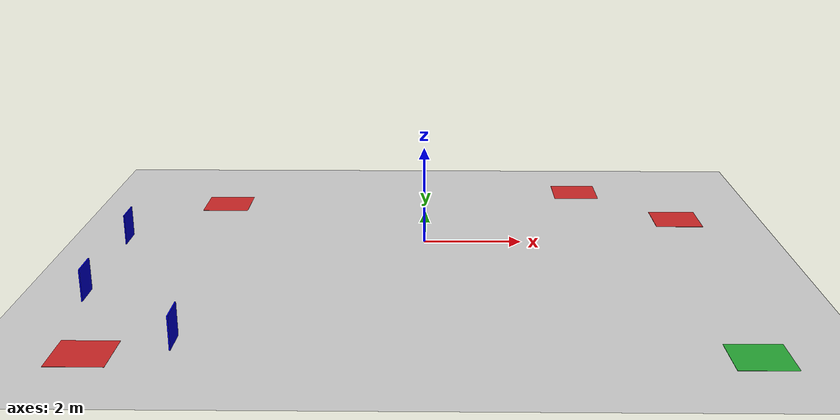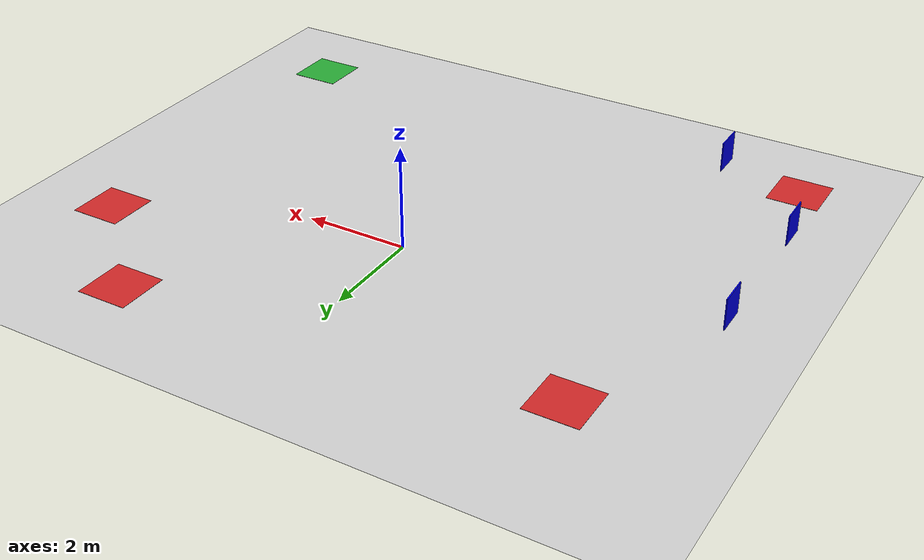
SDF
<sdf version="1.6">
 <world name="default">
  <model name="ground_plane">
   <static>1</static>
   <link name="link">
    <collision name="collision">
     <geometry><plane><normal>0 0 1</normal><size>100 100</size></plane></geometry>
     <surface>
      <contact><collide_bitmask>65535</collide_bitmask></contact>
      <friction><ode><mu>100</mu><mu2>50</mu2></ode></friction>
     </surface>
    </collision>
    <visual name="visual">
     <cast_shadows>0</cast_shadows>
     <geometry><plane><normal>0 0 1</normal><size>100 100</size></plane></geometry>
     <material>
      <script><uri>file://media/materials/scripts/gazebo.material</uri><name>Gazebo/Grey</name></script>
     </material>
    </visual>
   </link>
  </model>
  <model name="maze_base">
   <static>1</static>
   <link name="hole_1">
    <pose>5.5 1.5 0 0 -0 0</pose>
    <visual name="visual">
     <pose>0 0 0.003 0 -0 0</pose>
     <geometry><box><size>1 1 0.005</size></box></geometry>
     <material>
      <script><uri>file://media/materials/scripts/gazebo.material</uri><name>Gazebo/Red</name></script>
     </material>
    </visual>
   </link>
   <link name="hole_2">
    <pose>3.5 3.5 0 0 -0 0</pose>
    <visual name="visual">
     <pose>0 0 0.003 0 -0 0</pose>
     <geometry><box><size>1 1 0.005</size></box></geometry>
     <material>
      <script><uri>file://media/materials/scripts/gazebo.material</uri><name>Gazebo/Red</name></script>
     </material>
    </visual>
   </link>
   <link name="hole_3">
    <pose>-4.5 2.5 0 0 -0 0</pose>
    <visual name="visual">
     <pose>0 0 0.003 0 -0 0</pose>
     <geometry><box><size>1 1 0.005</size></box></geometry>
     <material>
      <script><uri>file://media/materials/scripts/gazebo.material</uri><name>Gazebo/Red</name></script>
     </material>
    </visual>
   </link>
   <link name="hole_4">
    <pose>-5.5 -5.5 0 0 -0 0</pose>
    <visual name="visual">
     <pose>0 0 0.003 0 -0 0</pose>
     <geometry><box><size>1 1 0.005</size></box></geometry>
     <material>
      <script><uri>file://media/materials/scripts/gazebo.material</uri><name>Gazebo/Red</name></script>
     </material>
    </visual>
   </link>
   <link name="destination">
    <pose>5.5 -5.5 0 0 -0 0</pose>
    <visual name="visual">
     <pose>0 0 0.003 0 -0 0</pose>
     <geometry><box><size>1 1 0.005</size></box></geometry>
     <material>
      <script><uri>file://media/materials/scripts/gazebo.material</uri><name>Gazebo/Green</name></script>
     </material>
    </visual>
   </link>
  </model>
  <model name="unit_box">
   <link name="link">
    <pose>0 0 0.5 0 -0 0</pose>
    <visual name="visual">
     <geometry><box><size>0.02 0.6 0.6</size></box></geometry>
     <material><ambient>0 0 1 1</ambient></material>
    </visual>
   </link>
   <static>1</static>
   <pose>-3.99 -5.5 0 0 -0 0</pose>
  </model>
  <model name="unit_box_0">
   <link name="link">
    <pose>0 0 0.5 0 -0 0</pose>
    <visual name="visual">
     <geometry><box><size>0.02 0.6 0.6</size></box></geometry>
     <material><ambient>0 0 1 1</ambient></material>
    </visual>
   </link>
   <static>1</static>
   <pose>-5.99 -0.5 0 0 -0 0</pose>
  </model>
  <model name="unit_box_2">
   <link name="link">
    <pose>0 0 0.5 0 -0 0</pose>
    <visual name="visual">
     <geometry><box><size>0.02 0.6 0.6</size></box></geometry>
     <material><ambient>0 0 1 1</ambient></material>
    </visual>
   </link>
   <static>1</static>
   <pose>-5.99 -3.5 0 0 -0 0</pose>
  </model>
 </world>
</sdf>
